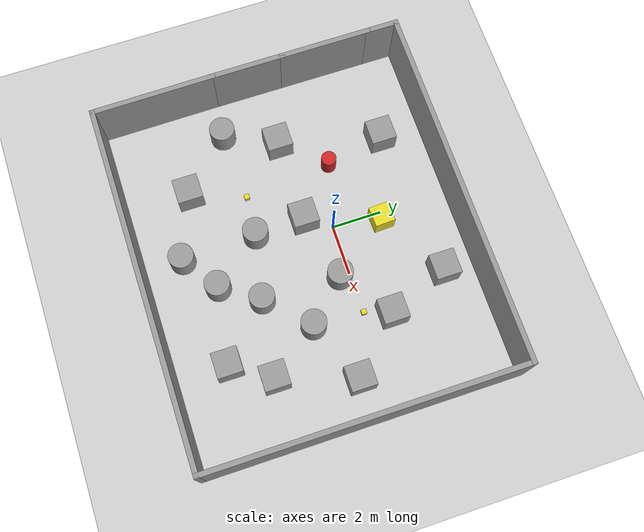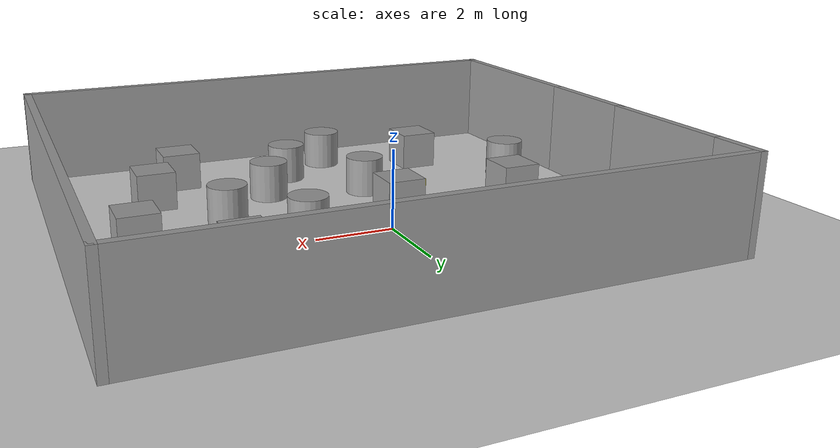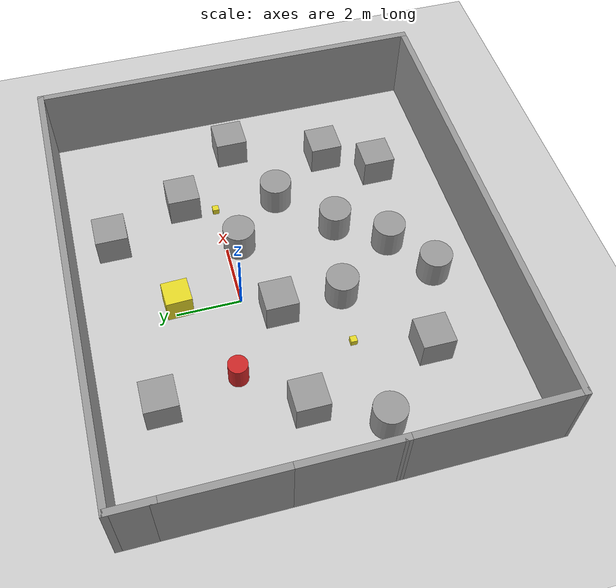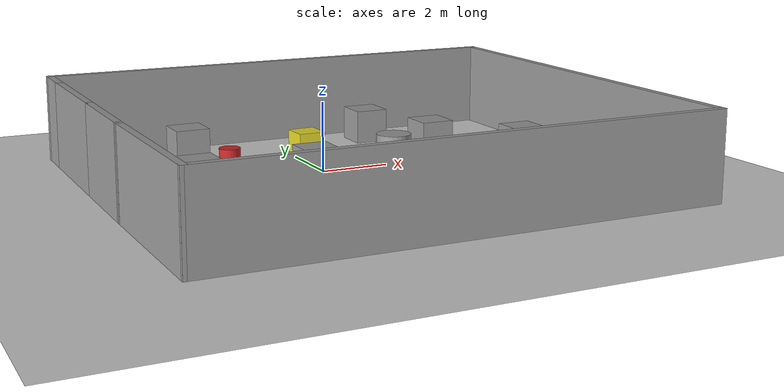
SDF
<sdf version="1.4">
 <world name="default">
  <light name="sun" type="directional">
   <pose>0 0 10 0 -0 0</pose>
   <diffuse>0.8 0.8 0.8 1</diffuse>
   <specular>0.2 0.2 0.2 1</specular>
   <attenuation>
    <range>1000</range>
    <constant>0.9</constant>
    <linear>0.01</linear>
    <quadratic>0.001</quadratic>
   </attenuation>
   <direction>-0.5 0.1 -0.9</direction>
  </light>
  <model name="ground_plane">
   <static>1</static>
   <link name="link">
    <collision name="collision">
     <geometry><plane><normal>0 0 1</normal><size>100 100</size></plane></geometry>
     <surface><friction><ode><mu>100</mu><mu2>50</mu2></ode></friction></surface>
    </collision>
    <visual name="visual">
     <cast_shadows>0</cast_shadows>
     <geometry><plane><normal>0 0 1</normal><size>100 100</size></plane></geometry>
     <material>
      <script><uri>file://media/materials/scripts/gazebo.material</uri><name>Gazebo/Grey</name></script>
     </material>
    </visual>
    <velocity_decay><linear>0</linear><angular>0</angular></velocity_decay>
   </link>
  </model>
  <physics type="ode">
   <max_step_size>0.001</max_step_size>
   <real_time_factor>1</real_time_factor>
   <real_time_update_rate>1000</real_time_update_rate>
   <gravity>0 0 -9.8</gravity>
  </physics>
  <scene><ambient>0.4 0.4 0.4 1</ambient><background>0.7 0.7 0.7 1</background><shadows>1</shadows></scene>
  <spherical_coordinates>
   <surface_model>EARTH_WGS84</surface_model>
   <latitude_deg>0</latitude_deg>
   <longitude_deg>0</longitude_deg>
   <elevation>0</elevation>
   <heading_deg>0</heading_deg>
  </spherical_coordinates>
  <model name="unit_cylinder_2">
   <pose>-2.54725 0.673087 0.399991 0 -0 0</pose>
   <link name="link">
    <inertial>
     <mass>1</mass>
     <inertia><ixx>1</ixx><ixy>0</ixy><ixz>0</ixz><iyy>1</iyy><iyz>0</iyz><izz>1</izz></inertia>
    </inertial>
    <collision name="collision">
     <geometry><cylinder><radius>0.3</radius><length>0.8</length></cylinder></geometry>
     <surface><friction><ode><mu>100000</mu><mu2>100000</mu2></ode></friction></surface>
    </collision>
    <visual name="visual">
     <geometry><cylinder><radius>0.3</radius><length>0.8</length></cylinder></geometry>
     <material>
      <script><uri>file://media/materials/scripts/gazebo.material</uri><name>Gazebo/Red</name></script>
     </material>
    </visual>
    <velocity_decay><linear>0</linear><angular>0</angular></velocity_decay>
   </link>
   <static>1</static>
  </model>
  <model name="unit_box_4">
   <pose>0.308066 1.88428 0.4 0 -0 0.038837</pose>
   <link name="link">
    <inertial>
     <mass>1</mass>
     <inertia><ixx>1</ixx><ixy>0</ixy><ixz>0</ixz><iyy>1</iyy><iyz>0</iyz><izz>1</izz></inertia>
    </inertial>
    <collision name="collision">
     <geometry><box><size>0.8 0.8 0.8</size></box></geometry>
     <surface><friction><ode><mu>100000</mu><mu2>100000</mu2></ode></friction></surface>
    </collision>
    <visual name="visual">
     <geometry><box><size>0.8 0.8 0.8</size></box></geometry>
     <material>
      <script><uri>file://media/materials/scripts/gazebo.material</uri><name>Gazebo/Yellow</name></script>
     </material>
    </visual>
    <velocity_decay><linear>0</linear><angular>0</angular></velocity_decay>
   </link>
   <static>1</static>
  </model>
  <model name="unit_box_1_0">
   <pose>3.62944 0.005574 0.1 1e-06 2e-06 -0.020369</pose>
   <link name="link">
    <inertial>
     <mass>1</mass>
     <inertia><ixx>1</ixx><ixy>0</ixy><ixz>0</ixz><iyy>1</iyy><iyz>0</iyz><izz>1</izz></inertia>
    </inertial>
    <collision name="collision">
     <geometry><box><size>0.2 0.2 0.2</size></box></geometry>
     <surface><friction><ode><mu>100000</mu><mu2>100000</mu2></ode></friction></surface>
    </collision>
    <visual name="visual">
     <geometry><box><size>0.2 0.2 0.2</size></box></geometry>
     <material>
      <script><uri>file://media/materials/scripts/gazebo.material</uri><name>Gazebo/Yellow</name></script>
     </material>
    </visual>
    <velocity_decay><linear>0</linear><angular>0</angular></velocity_decay>
   </link>
   <static>1</static>
  </model>
  <model name="unit_box_2">
   <pose>-2.2463 -2.86234 0.1 -1e-06 3e-06 -4.8e-05</pose>
   <link name="link">
    <inertial>
     <mass>1</mass>
     <inertia><ixx>1</ixx><ixy>0</ixy><ixz>0</ixz><iyy>1</iyy><iyz>0</iyz><izz>1</izz></inertia>
    </inertial>
    <collision name="collision">
     <geometry><box><size>0.2 0.2 0.2</size></box></geometry>
     <surface><friction><ode><mu>100000</mu><mu2>100000</mu2></ode></friction></surface>
    </collision>
    <visual name="visual">
     <geometry><box><size>0.2 0.2 0.2</size></box></geometry>
     <material>
      <script><uri>file://media/materials/scripts/gazebo.material</uri><name>Gazebo/Yellow</name></script>
     </material>
    </visual>
    <velocity_decay><linear>0</linear><angular>0</angular></velocity_decay>
   </link>
   <static>1</static>
  </model>
  <model name="walled">
   <link name="Wall_1">
    <collision name="Wall_1_Collision">
     <geometry><box><size>3.02883 0.2 2.5</size></box></geometry>
     <pose>0 0 1.25 0 -0 0</pose>
    </collision>
    <visual name="Wall_1_Visual">
     <pose>0 0 1.25 0 -0 0</pose>
     <geometry><box><size>3.02883 0.2 2.5</size></box></geometry>
     <material>
      <script><uri>file://media/materials/scripts/gazebo.material</uri><name>Gazebo/Grey</name></script>
     </material>
    </visual>
    <velocity_decay><linear>0</linear><angular>0</angular></velocity_decay>
    <pose>-6.55501 -1.36193 0 0 -0 1.5708</pose>
   </link>
   <link name="Wall_2">
    <collision name="Wall_2_Collision">
     <geometry><box><size>3.7448 0.2 2.5</size></box></geometry>
     <pose>0 0 1.25 0 -0 0</pose>
    </collision>
    <visual name="Wall_2_Visual">
     <pose>0 0 1.25 0 -0 0</pose>
     <geometry><box><size>3.7448 0.2 2.5</size></box></geometry>
     <material>
      <script><uri>file://media/materials/scripts/gazebo.material</uri><name>Gazebo/Grey</name></script>
     </material>
    </visual>
    <velocity_decay><linear>0</linear><angular>0</angular></velocity_decay>
    <pose>-6.55501 1.82489 0 0 -0 1.5708</pose>
   </link>
   <link name="Wall_3">
    <collision name="Wall_3_Collision">
     <geometry><box><size>1.37705 0.2 2.5</size></box></geometry>
     <pose>0 0 1.25 0 -0 0</pose>
    </collision>
    <visual name="Wall_3_Visual">
     <pose>0 0 1.25 0 -0 0</pose>
     <geometry><box><size>1.37705 0.2 2.5</size></box></geometry>
     <material>
      <script><uri>file://media/materials/scripts/gazebo.material</uri><name>Gazebo/Grey</name></script>
     </material>
    </visual>
    <velocity_decay><linear>0</linear><angular>0</angular></velocity_decay>
    <pose>-6.55501 4.18582 0 0 -0 1.5708</pose>
   </link>
   <link name="Wall_4">
    <collision name="Wall_4_Collision">
     <geometry><box><size>14.4141 0.2 2.5</size></box></geometry>
     <pose>0 0 1.25 0 -0 0</pose>
    </collision>
    <visual name="Wall_4_Visual">
     <pose>0 0 1.25 0 -0 0</pose>
     <geometry><box><size>14.4141 0.2 2.5</size></box></geometry>
     <material>
      <script><uri>file://media/materials/scripts/gazebo.material</uri><name>Gazebo/Grey</name></script>
     </material>
    </visual>
    <velocity_decay><linear>0</linear><angular>0</angular></velocity_decay>
    <pose>0.552028 4.77434 0 0 -0 0</pose>
   </link>
   <link name="Wall_5">
    <collision name="Wall_5_Collision">
     <geometry><box><size>12.5591 0.2 2.5</size></box></geometry>
     <pose>0 0 1.25 0 -0 0</pose>
    </collision>
    <visual name="Wall_5_Visual">
     <pose>0 0 1.25 0 -0 0</pose>
     <geometry><box><size>12.5591 0.2 2.5</size></box></geometry>
     <material>
      <script><uri>file://media/materials/scripts/gazebo.material</uri><name>Gazebo/Grey</name></script>
     </material>
    </visual>
    <velocity_decay><linear>0</linear><angular>0</angular></velocity_decay>
    <pose>7.65907 -1.40519 0 0 0 -1.5708</pose>
   </link>
   <link name="Wall_6">
    <collision name="Wall_6_Collision">
     <geometry><box><size>14.3782 0.2 2.5</size></box></geometry>
     <pose>0 0 1.25 0 -0 0</pose>
    </collision>
    <visual name="Wall_6_Visual">
     <pose>0 0 1.25 0 -0 0</pose>
     <geometry><box><size>14.3782 0.2 2.5</size></box></geometry>
     <material>
      <script><uri>file://media/materials/scripts/gazebo.material</uri><name>Gazebo/Grey</name></script>
     </material>
    </visual>
    <velocity_decay><linear>0</linear><angular>0</angular></velocity_decay>
    <pose>0.569986 -7.58473 0 0 -0 3.14159</pose>
   </link>
   <link name="Wall_7">
    <collision name="Wall_7_Collision">
     <geometry><box><size>5.00853 0.2 2.5</size></box></geometry>
     <pose>0 0 1.25 0 -0 0</pose>
    </collision>
    <visual name="Wall_7_Visual">
     <pose>0 0 1.25 0 -0 0</pose>
     <geometry><box><size>5.00853 0.2 2.5</size></box></geometry>
     <material>
      <script><uri>file://media/materials/scripts/gazebo.material</uri><name>Gazebo/Grey</name></script>
     </material>
    </visual>
    <velocity_decay><linear>0</linear><angular>0</angular></velocity_decay>
    <pose>-6.53705 -5.18054 0 0 -0 1.57827</pose>
   </link>
   <link name="Wall_8">
    <collision name="Wall_8_Collision">
     <geometry><box><size>0.2 0.2 2.5</size></box></geometry>
     <pose>0 0 1.25 0 -0 0</pose>
    </collision>
    <visual name="Wall_8_Visual">
     <pose>0 0 1.25 0 -0 0</pose>
     <geometry><box><size>0.2 0.2 2.5</size></box></geometry>
     <material>
      <script><uri>file://media/materials/scripts/gazebo.material</uri><name>Gazebo/Grey</name></script>
     </material>
    </visual>
    <velocity_decay><linear>0</linear><angular>0</angular></velocity_decay>
    <pose>-6.55501 -2.77634 0 0 -0 0</pose>
   </link>
   <static>1</static>
  </model>
  <model name="unit_cylinder_1">
   <pose>1 -5 0.499991 0 -0 0</pose>
   <link name="link">
    <inertial>
     <mass>1</mass>
     <inertia><ixx>1</ixx><ixy>0</ixy><ixz>0</ixz><iyy>1</iyy><iyz>0</iyz><izz>1</izz></inertia>
    </inertial>
    <collision name="collision">
     <geometry><cylinder><radius>0.244547</radius><length>1</length></cylinder></geometry>
    </collision>
    <visual name="visual">
     <geometry><cylinder><radius>0.5</radius><length>1</length></cylinder></geometry>
     <material>
      <script><uri>file://media/materials/scripts/gazebo.material</uri><name>Gazebo/Grey</name></script>
     </material>
    </visual>
    <velocity_decay><linear>0</linear><angular>0</angular></velocity_decay>
   </link>
   <static>1</static>
  </model>
  <model name="unit_box_2_0">
   <pose>-3 -5 0.5 0 -0 0</pose>
   <link name="link">
    <inertial>
     <mass>1</mass>
     <inertia><ixx>1</ixx><ixy>0</ixy><ixz>0</ixz><iyy>1</iyy><iyz>0</iyz><izz>1</izz></inertia>
    </inertial>
    <collision name="collision"><geometry><box><size>1 1 1</size></box></geometry></collision>
    <visual name="visual">
     <geometry><box><size>1 1 1</size></box></geometry>
     <material>
      <script><uri>file://media/materials/scripts/gazebo.material</uri><name>Gazebo/Grey</name></script>
     </material>
    </visual>
    <velocity_decay><linear>0</linear><angular>0</angular></velocity_decay>
   </link>
   <static>1</static>
  </model>
  <model name="unit_box_3">
   <pose>-4 -1 0.5 0 -0 0</pose>
   <link name="link">
    <inertial>
     <mass>1</mass>
     <inertia><ixx>1</ixx><ixy>0</ixy><ixz>0</ixz><iyy>1</iyy><iyz>0</iyz><izz>1</izz></inertia>
    </inertial>
    <collision name="collision"><geometry><box><size>1 1 1</size></box></geometry></collision>
    <visual name="visual">
     <geometry><box><size>1 1 1</size></box></geometry>
     <material>
      <script><uri>file://media/materials/scripts/gazebo.material</uri><name>Gazebo/Grey</name></script>
     </material>
    </visual>
    <velocity_decay><linear>0</linear><angular>0</angular></velocity_decay>
   </link>
   <static>1</static>
  </model>
  <model name="unit_box_4_0">
   <pose>4 1 0.5 0 -0 0</pose>
   <link name="link">
    <inertial>
     <mass>1</mass>
     <inertia><ixx>1</ixx><ixy>0</ixy><ixz>0</ixz><iyy>1</iyy><iyz>0</iyz><izz>1</izz></inertia>
    </inertial>
    <collision name="collision"><geometry><box><size>1 1 1</size></box></geometry></collision>
    <visual name="visual">
     <geometry><box><size>1 1 1</size></box></geometry>
     <material>
      <script><uri>file://media/materials/scripts/gazebo.material</uri><name>Gazebo/Grey</name></script>
     </material>
    </visual>
    <velocity_decay><linear>0</linear><angular>0</angular></velocity_decay>
   </link>
   <static>1</static>
  </model>
  <model name="unit_box_5">
   <pose>5 -4 0.5 0 -0 0</pose>
   <link name="link">
    <inertial>
     <mass>1</mass>
     <inertia><ixx>1</ixx><ixy>0</ixy><ixz>0</ixz><iyy>1</iyy><iyz>0</iyz><izz>1</izz></inertia>
    </inertial>
    <collision name="collision"><geometry><box><size>1 1 1</size></box></geometry></collision>
    <visual name="visual">
     <geometry><box><size>1 1 1</size></box></geometry>
     <material>
      <script><uri>file://media/materials/scripts/gazebo.material</uri><name>Gazebo/Grey</name></script>
     </material>
    </visual>
    <velocity_decay><linear>0</linear><angular>0</angular></velocity_decay>
   </link>
   <static>1</static>
  </model>
  <model name="unit_box_6">
   <pose>-3 3 0.5 0 -0 0</pose>
   <link name="link">
    <inertial>
     <mass>1</mass>
     <inertia><ixx>1</ixx><ixy>0</ixy><ixz>0</ixz><iyy>1</iyy><iyz>0</iyz><izz>1</izz></inertia>
    </inertial>
    <collision name="collision"><geometry><box><size>1 1 1</size></box></geometry></collision>
    <visual name="visual">
     <geometry><box><size>1 1 1</size></box></geometry>
     <material>
      <script><uri>file://media/materials/scripts/gazebo.material</uri><name>Gazebo/Grey</name></script>
     </material>
    </visual>
    <velocity_decay><linear>0</linear><angular>0</angular></velocity_decay>
   </link>
   <static>1</static>
  </model>
  <model name="unit_cylinder_2_0">
   <pose>-0.461545 -6 0.499998 1e-06 -0 0</pose>
   <link name="link">
    <inertial>
     <mass>1</mass>
     <inertia><ixx>1</ixx><ixy>0</ixy><ixz>0</ixz><iyy>1</iyy><iyz>0</iyz><izz>1</izz></inertia>
    </inertial>
    <collision name="collision">
     <geometry><cylinder><radius>0.5</radius><length>1</length></cylinder></geometry>
    </collision>
    <visual name="visual">
     <geometry><cylinder><radius>0.5</radius><length>1</length></cylinder></geometry>
     <material>
      <script><uri>file://media/materials/scripts/gazebo.material</uri><name>Gazebo/Grey</name></script>
     </material>
    </visual>
    <velocity_decay><linear>0</linear><angular>0</angular></velocity_decay>
   </link>
   <static>1</static>
  </model>
  <model name="unit_cylinder_3">
   <pose>-0.567416 -3 0.499992 -1e-06 0 0</pose>
   <link name="link">
    <inertial>
     <mass>1</mass>
     <inertia><ixx>1</ixx><ixy>0</ixy><ixz>0</ixz><iyy>1</iyy><iyz>0</iyz><izz>1</izz></inertia>
    </inertial>
    <collision name="collision">
     <geometry><cylinder><radius>0.5</radius><length>1</length></cylinder></geometry>
    </collision>
    <visual name="visual">
     <geometry><cylinder><radius>0.5</radius><length>1</length></cylinder></geometry>
     <material>
      <script><uri>file://media/materials/scripts/gazebo.material</uri><name>Gazebo/Grey</name></script>
     </material>
    </visual>
    <velocity_decay><linear>0</linear><angular>0</angular></velocity_decay>
   </link>
   <static>1</static>
  </model>
  <model name="unit_cylinder_4">
   <pose>-5 -3 0.499998 1e-06 -0 0</pose>
   <link name="link">
    <inertial>
     <mass>1</mass>
     <inertia><ixx>1</ixx><ixy>0</ixy><ixz>0</ixz><iyy>1</iyy><iyz>0</iyz><izz>1</izz></inertia>
    </inertial>
    <collision name="collision">
     <geometry><cylinder><radius>0.5</radius><length>1</length></cylinder></geometry>
    </collision>
    <visual name="visual">
     <geometry><cylinder><radius>0.5</radius><length>1</length></cylinder></geometry>
     <material>
      <script><uri>file://media/materials/scripts/gazebo.material</uri><name>Gazebo/Grey</name></script>
     </material>
    </visual>
    <velocity_decay><linear>0</linear><angular>0</angular></velocity_decay>
   </link>
   <static>1</static>
  </model>
  <model name="unit_cylinder_5">
   <pose>3.5686 -2 0.499992 -1e-06 0 0</pose>
   <link name="link">
    <inertial>
     <mass>1</mass>
     <inertia><ixx>1</ixx><ixy>0</ixy><ixz>0</ixz><iyy>1</iyy><iyz>0</iyz><izz>1</izz></inertia>
    </inertial>
    <collision name="collision">
     <geometry><cylinder><radius>0.5</radius><length>1</length></cylinder></geometry>
    </collision>
    <visual name="visual">
     <geometry><cylinder><radius>0.5</radius><length>1</length></cylinder></geometry>
     <material>
      <script><uri>file://media/materials/scripts/gazebo.material</uri><name>Gazebo/Grey</name></script>
     </material>
    </visual>
    <velocity_decay><linear>0</linear><angular>0</angular></velocity_decay>
   </link>
   <static>1</static>
  </model>
  <model name="unit_cylinder_6">
   <pose>2.02775 -0.419846 0.499998 1e-06 -0 0</pose>
   <link name="link">
    <inertial>
     <mass>1</mass>
     <inertia><ixx>1</ixx><ixy>0</ixy><ixz>0</ixz><iyy>1</iyy><iyz>0</iyz><izz>1</izz></inertia>
    </inertial>
    <collision name="collision">
     <geometry><cylinder><radius>0.5</radius><length>1</length></cylinder></geometry>
    </collision>
    <visual name="visual">
     <geometry><cylinder><radius>0.5</radius><length>1</length></cylinder></geometry>
     <material>
      <script><uri>file://media/materials/scripts/gazebo.material</uri><name>Gazebo/Grey</name></script>
     </material>
    </visual>
    <velocity_decay><linear>0</linear><angular>0</angular></velocity_decay>
   </link>
   <static>1</static>
  </model>
  <model name="unit_box_7">
   <pose>4 -5.51358 0.5 0 -0 0</pose>
   <link name="link">
    <inertial>
     <mass>1</mass>
     <inertia><ixx>1</ixx><ixy>0</ixy><ixz>0</ixz><iyy>1</iyy><iyz>0</iyz><izz>1</izz></inertia>
    </inertial>
    <collision name="collision"><geometry><box><size>1 1 1</size></box></geometry></collision>
    <visual name="visual">
     <geometry><box><size>1 1 1</size></box></geometry>
     <material>
      <script><uri>file://media/materials/scripts/gazebo.material</uri><name>Gazebo/Grey</name></script>
     </material>
    </visual>
    <velocity_decay><linear>0</linear><angular>0</angular></velocity_decay>
   </link>
   <static>1</static>
  </model>
  <model name="unit_box_8">
   <pose>3 3.45705 0.5 0 -0 0</pose>
   <link name="link">
    <inertial>
     <mass>1</mass>
     <inertia><ixx>1</ixx><ixy>0</ixy><ixz>0</ixz><iyy>1</iyy><iyz>0</iyz><izz>1</izz></inertia>
    </inertial>
    <collision name="collision"><geometry><box><size>1 1 1</size></box></geometry></collision>
    <visual name="visual">
     <geometry><box><size>1 1 1</size></box></geometry>
     <material>
      <script><uri>file://media/materials/scripts/gazebo.material</uri><name>Gazebo/Grey</name></script>
     </material>
    </visual>
    <velocity_decay><linear>0</linear><angular>0</angular></velocity_decay>
   </link>
   <static>1</static>
  </model>
  <model name="unit_box_9">
   <pose>-0.647205 -1.01029 0.5 0 -0 0</pose>
   <link name="link">
    <inertial>
     <mass>1</mass>
     <inertia><ixx>1</ixx><ixy>0</ixy><ixz>0</ixz><iyy>1</iyy><iyz>0</iyz><izz>1</izz></inertia>
    </inertial>
    <collision name="collision"><geometry><box><size>1 1 1</size></box></geometry></collision>
    <visual name="visual">
     <geometry><box><size>1 1 1</size></box></geometry>
     <material>
      <script><uri>file://media/materials/scripts/gazebo.material</uri><name>Gazebo/Grey</name></script>
     </material>
    </visual>
    <velocity_decay><linear>0</linear><angular>0</angular></velocity_decay>
   </link>
   <static>1</static>
  </model>
  <model name="unit_cylinder_7">
   <pose>2 -3.54067 0.499998 0 -0 0</pose>
   <link name="link">
    <inertial>
     <mass>1</mass>
     <inertia><ixx>1</ixx><ixy>0</ixy><ixz>0</ixz><iyy>1</iyy><iyz>0</iyz><izz>1</izz></inertia>
    </inertial>
    <collision name="collision">
     <geometry><cylinder><radius>0.5</radius><length>1</length></cylinder></geometry>
    </collision>
    <visual name="visual">
     <geometry><cylinder><radius>0.5</radius><length>1</length></cylinder></geometry>
     <material>
      <script><uri>file://media/materials/scripts/gazebo.material</uri><name>Gazebo/Grey</name></script>
     </material>
    </visual>
    <velocity_decay><linear>0</linear><angular>0</angular></velocity_decay>
   </link>
   <static>1</static>
  </model>
  <model name="unit_box_10">
   <pose>6 -1 0.5 0 -0 0</pose>
   <link name="link">
    <inertial>
     <mass>1</mass>
     <inertia><ixx>1</ixx><ixy>0</ixy><ixz>0</ixz><iyy>1</iyy><iyz>0</iyz><izz>1</izz></inertia>
    </inertial>
    <collision name="collision"><geometry><box><size>1 1 1</size></box></geometry></collision>
    <visual name="visual">
     <geometry><box><size>1 1 1</size></box></geometry>
     <material>
      <script><uri>file://media/materials/scripts/gazebo.material</uri><name>Gazebo/Grey</name></script>
     </material>
    </visual>
    <velocity_decay><linear>0</linear><angular>0</angular></velocity_decay>
   </link>
   <static>1</static>
  </model>
 </world>
</sdf>
